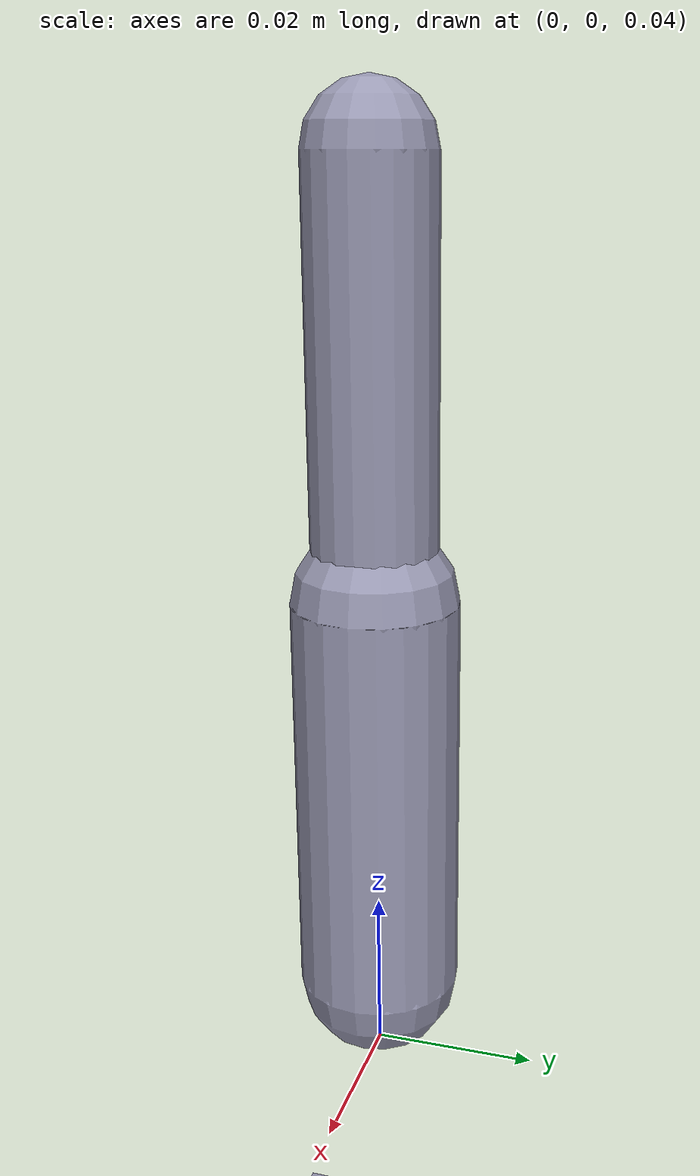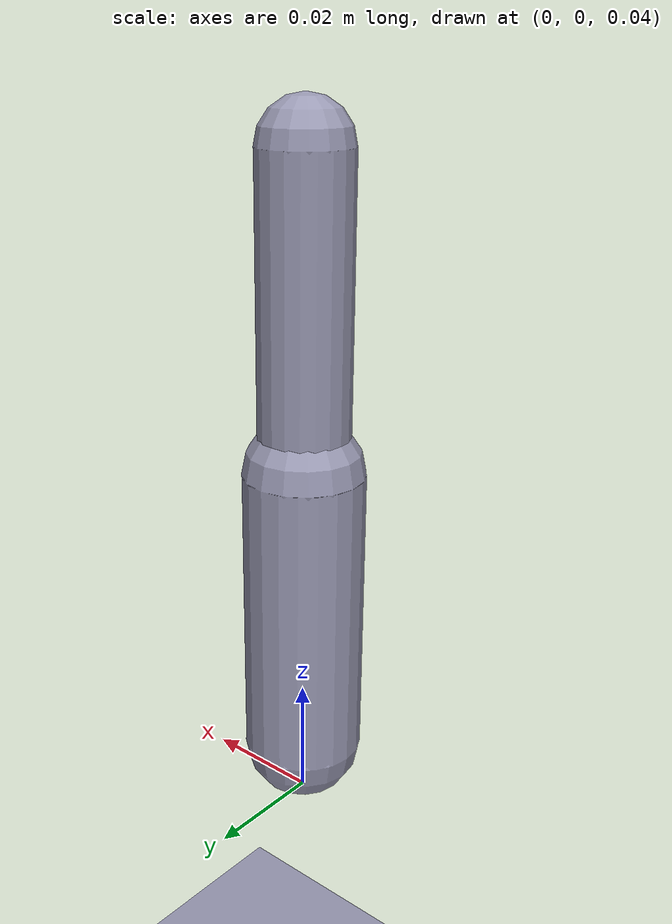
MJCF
<?xml version="1.0" encoding="utf-8"?>
<mujoco model="OF_M_20260129_0001">
  <compiler angle="radian" autolimits="true"/>
  <option timestep="0.002"/>
  <default>
    <joint damping="0.1" armature="0.001"/>
    <geom friction="0.5 0.005 0.0001" rgba="0.6 0.6 0.7 1"/>
  </default>
  <worldbody>
    <geom name="ground" type="plane" size="0.5 0.5 0.1" condim="3"/>
    <light pos="0 0 1" dir="0 0 -1" directional="true"/>
    <body name="link0" pos="0 0 0.05">
      <joint name="hinge0" type="hinge" axis="0 1 0" range="-1.57 1.57"/>
      <geom name="link0_geom" type="capsule" fromto="0 0 0 0 0 0.05" size="0.010000000000000002"/>
      <body name="link1" pos="0 0 0.05">
        <joint name="hinge1" type="hinge" axis="0 1 0" range="-1 1"/>
        <geom name="link1_geom" type="capsule" fromto="0 0 0 0 0 0.05" size="0.0075"/>
      </body>
    </body>
  </worldbody>
  <actuator>
    <motor name="act0" joint="hinge0" gear="10" ctrllimited="true" ctrlrange="-1 1"/>
  </actuator>
  <sensor>
    <jointpos name="q0" joint="hinge0"/>
    <jointvel name="dq0" joint="hinge0"/>
  </sensor>
</mujoco>
